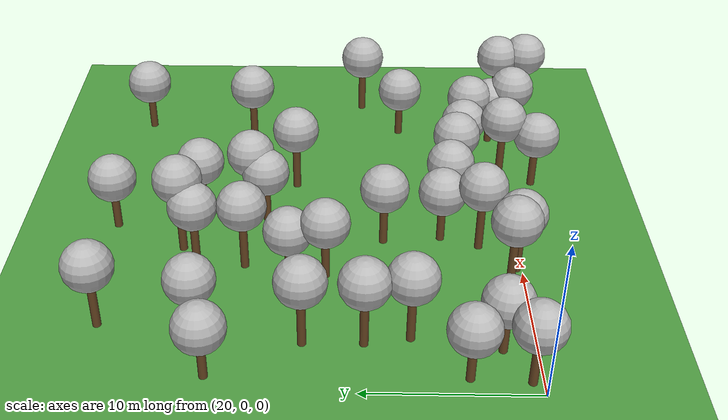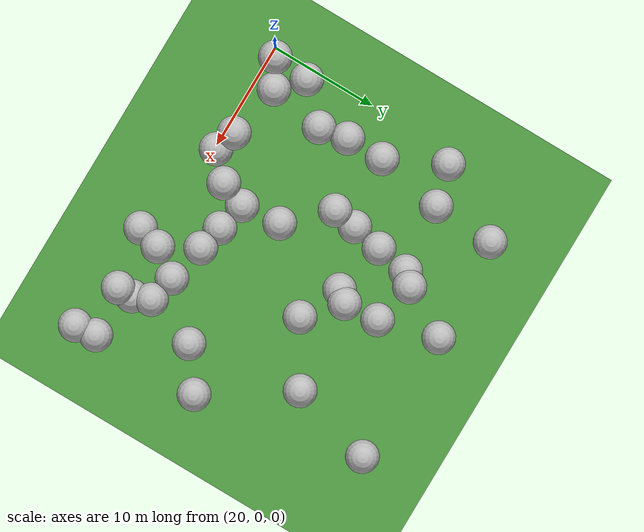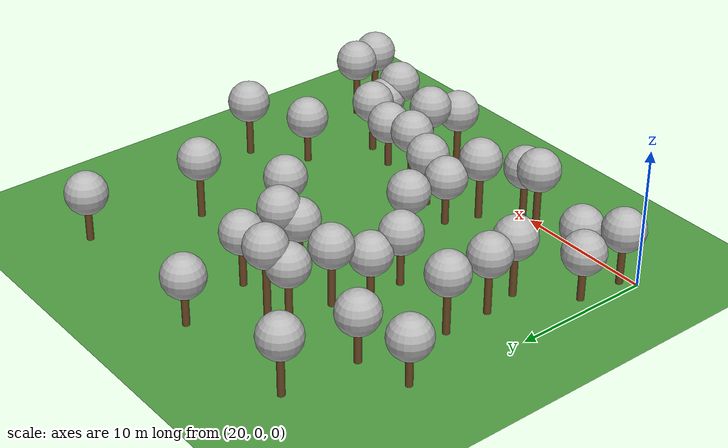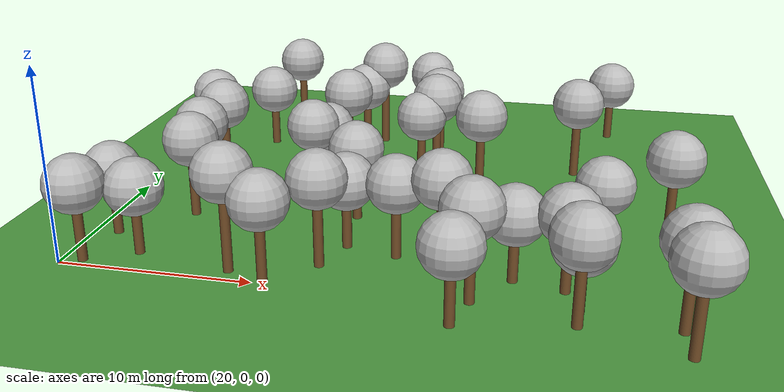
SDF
<sdf version="1.5">
 <world name="default">
  <model name="tree_simple499">
   <static>1</static>
   <link name="link">
    <pose>0 0 0.1 0 -0 0</pose>
    <collision name="collision_trunk">
     <pose>0 0 2 0 -0 0</pose>
     <geometry><cylinder><radius>0.25</radius><length>4</length></cylinder></geometry>
    </collision>
    <collision name="collision_treetop">
     <pose>0 0 5.2 0 -0 0</pose>
     <geometry><sphere><radius>1.5</radius></sphere></geometry>
    </collision>
    <visual name="trunk">
     <pose>0 0 2 0 -0 0</pose>
     <geometry><cylinder><radius>0.25</radius><length>4</length></cylinder></geometry>
     <material>
      <script>
       <uri>model://tree_simple/scripts</uri>
       <uri>model://tree_simple/materials/textures</uri>
       <name>TreeSimple/Trunk</name>
      </script>
     </material>
    </visual>
    <visual name="treetop">
     <pose>0 0 5.2 0 -0 0</pose>
     <geometry><sphere><radius>1.5</radius></sphere></geometry>
     <material>
      <script>
       <uri>model://tree_simple/scripts</uri>
       <uri>model://tree_simple/materials/textures</uri>
       <name>TreeSimple/Treetop</name>
      </script>
     </material>
    </visual>
   </link>
   <pose>49.5772894431 -0.301033806291 -0.9218746038410421 0 -0 0</pose>
  </model>
  <model name="tree_simple490">
   <static>1</static>
   <link name="link">
    <pose>0 0 0.1 0 -0 0</pose>
    <collision name="collision_trunk">
     <pose>0 0 2 0 -0 0</pose>
     <geometry><cylinder><radius>0.25</radius><length>4</length></cylinder></geometry>
    </collision>
    <collision name="collision_treetop">
     <pose>0 0 5.2 0 -0 0</pose>
     <geometry><sphere><radius>1.5</radius></sphere></geometry>
    </collision>
    <visual name="trunk">
     <pose>0 0 2 0 -0 0</pose>
     <geometry><cylinder><radius>0.25</radius><length>4</length></cylinder></geometry>
     <material>
      <script>
       <uri>model://tree_simple/scripts</uri>
       <uri>model://tree_simple/materials/textures</uri>
       <name>TreeSimple/Trunk</name>
      </script>
     </material>
    </visual>
    <visual name="treetop">
     <pose>0 0 5.2 0 -0 0</pose>
     <geometry><sphere><radius>1.5</radius></sphere></geometry>
     <material>
      <script>
       <uri>model://tree_simple/scripts</uri>
       <uri>model://tree_simple/materials/textures</uri>
       <name>TreeSimple/Treetop</name>
      </script>
     </material>
    </visual>
   </link>
   <pose>28.486302093 0.994684244644 -0.20094864405570112 0 -0 0</pose>
  </model>
  <model name="tree_simple487">
   <static>1</static>
   <link name="link">
    <pose>0 0 0.1 0 -0 0</pose>
    <collision name="collision_trunk">
     <pose>0 0 2 0 -0 0</pose>
     <geometry><cylinder><radius>0.25</radius><length>4</length></cylinder></geometry>
    </collision>
    <collision name="collision_treetop">
     <pose>0 0 5.2 0 -0 0</pose>
     <geometry><sphere><radius>1.5</radius></sphere></geometry>
    </collision>
    <visual name="trunk">
     <pose>0 0 2 0 -0 0</pose>
     <geometry><cylinder><radius>0.25</radius><length>4</length></cylinder></geometry>
     <material>
      <script>
       <uri>model://tree_simple/scripts</uri>
       <uri>model://tree_simple/materials/textures</uri>
       <name>TreeSimple/Trunk</name>
      </script>
     </material>
    </visual>
    <visual name="treetop">
     <pose>0 0 5.2 0 -0 0</pose>
     <geometry><sphere><radius>1.5</radius></sphere></geometry>
     <material>
      <script>
       <uri>model://tree_simple/scripts</uri>
       <uri>model://tree_simple/materials/textures</uri>
       <name>TreeSimple/Treetop</name>
      </script>
     </material>
    </visual>
   </link>
   <pose>33.1280168764 8.35331864597 -1.3064170109202478 0 -0 0</pose>
  </model>
  <model name="tree_simple485">
   <static>1</static>
   <link name="link">
    <pose>0 0 0.1 0 -0 0</pose>
    <collision name="collision_trunk">
     <pose>0 0 2 0 -0 0</pose>
     <geometry><cylinder><radius>0.25</radius><length>4</length></cylinder></geometry>
    </collision>
    <collision name="collision_treetop">
     <pose>0 0 5.2 0 -0 0</pose>
     <geometry><sphere><radius>1.5</radius></sphere></geometry>
    </collision>
    <visual name="trunk">
     <pose>0 0 2 0 -0 0</pose>
     <geometry><cylinder><radius>0.25</radius><length>4</length></cylinder></geometry>
     <material>
      <script>
       <uri>model://tree_simple/scripts</uri>
       <uri>model://tree_simple/materials/textures</uri>
       <name>TreeSimple/Trunk</name>
      </script>
     </material>
    </visual>
    <visual name="treetop">
     <pose>0 0 5.2 0 -0 0</pose>
     <geometry><sphere><radius>1.5</radius></sphere></geometry>
     <material>
      <script>
       <uri>model://tree_simple/scripts</uri>
       <uri>model://tree_simple/materials/textures</uri>
       <name>TreeSimple/Treetop</name>
      </script>
     </material>
    </visual>
   </link>
   <pose>38.4673421664 3.60529435805 -0.771484179041458 0 -0 0</pose>
  </model>
  <model name="tree_simple431">
   <static>1</static>
   <link name="link">
    <pose>0 0 0.1 0 -0 0</pose>
    <collision name="collision_trunk">
     <pose>0 0 2 0 -0 0</pose>
     <geometry><cylinder><radius>0.25</radius><length>4</length></cylinder></geometry>
    </collision>
    <collision name="collision_treetop">
     <pose>0 0 5.2 0 -0 0</pose>
     <geometry><sphere><radius>1.5</radius></sphere></geometry>
    </collision>
    <visual name="trunk">
     <pose>0 0 2 0 -0 0</pose>
     <geometry><cylinder><radius>0.25</radius><length>4</length></cylinder></geometry>
     <material>
      <script>
       <uri>model://tree_simple/scripts</uri>
       <uri>model://tree_simple/materials/textures</uri>
       <name>TreeSimple/Trunk</name>
      </script>
     </material>
    </visual>
    <visual name="treetop">
     <pose>0 0 5.2 0 -0 0</pose>
     <geometry><sphere><radius>1.5</radius></sphere></geometry>
     <material>
      <script>
       <uri>model://tree_simple/scripts</uri>
       <uri>model://tree_simple/materials/textures</uri>
       <name>TreeSimple/Treetop</name>
      </script>
     </material>
    </visual>
   </link>
   <pose>21.2091972338 3.93897030512 -1.7713037912346459 0 -0 0</pose>
  </model>
  <model name="tree_simple387">
   <static>1</static>
   <link name="link">
    <pose>0 0 0.1 0 -0 0</pose>
    <collision name="collision_trunk">
     <pose>0 0 2 0 -0 0</pose>
     <geometry><cylinder><radius>0.25</radius><length>4</length></cylinder></geometry>
    </collision>
    <collision name="collision_treetop">
     <pose>0 0 5.2 0 -0 0</pose>
     <geometry><sphere><radius>1.5</radius></sphere></geometry>
    </collision>
    <visual name="trunk">
     <pose>0 0 2 0 -0 0</pose>
     <geometry><cylinder><radius>0.25</radius><length>4</length></cylinder></geometry>
     <material>
      <script>
       <uri>model://tree_simple/scripts</uri>
       <uri>model://tree_simple/materials/textures</uri>
       <name>TreeSimple/Trunk</name>
      </script>
     </material>
    </visual>
    <visual name="treetop">
     <pose>0 0 5.2 0 -0 0</pose>
     <geometry><sphere><radius>1.5</radius></sphere></geometry>
     <material>
      <script>
       <uri>model://tree_simple/scripts</uri>
       <uri>model://tree_simple/materials/textures</uri>
       <name>TreeSimple/Treetop</name>
      </script>
     </material>
    </visual>
   </link>
   <pose>25.1584680938 24.780687948 -1.0369780641451543 0 -0 0</pose>
  </model>
  <model name="tree_simple378">
   <static>1</static>
   <link name="link">
    <pose>0 0 0.1 0 -0 0</pose>
    <collision name="collision_trunk">
     <pose>0 0 2 0 -0 0</pose>
     <geometry><cylinder><radius>0.25</radius><length>4</length></cylinder></geometry>
    </collision>
    <collision name="collision_treetop">
     <pose>0 0 5.2 0 -0 0</pose>
     <geometry><sphere><radius>1.5</radius></sphere></geometry>
    </collision>
    <visual name="trunk">
     <pose>0 0 2 0 -0 0</pose>
     <geometry><cylinder><radius>0.25</radius><length>4</length></cylinder></geometry>
     <material>
      <script>
       <uri>model://tree_simple/scripts</uri>
       <uri>model://tree_simple/materials/textures</uri>
       <name>TreeSimple/Trunk</name>
      </script>
     </material>
    </visual>
    <visual name="treetop">
     <pose>0 0 5.2 0 -0 0</pose>
     <geometry><sphere><radius>1.5</radius></sphere></geometry>
     <material>
      <script>
       <uri>model://tree_simple/scripts</uri>
       <uri>model://tree_simple/materials/textures</uri>
       <name>TreeSimple/Treetop</name>
      </script>
     </material>
    </visual>
   </link>
   <pose>45.079812121 -0.754391736344 -1.0091268099741109 0 -0 0</pose>
  </model>
  <model name="tree_simple363">
   <static>1</static>
   <link name="link">
    <pose>0 0 0.1 0 -0 0</pose>
    <collision name="collision_trunk">
     <pose>0 0 2 0 -0 0</pose>
     <geometry><cylinder><radius>0.25</radius><length>4</length></cylinder></geometry>
    </collision>
    <collision name="collision_treetop">
     <pose>0 0 5.2 0 -0 0</pose>
     <geometry><sphere><radius>1.5</radius></sphere></geometry>
    </collision>
    <visual name="trunk">
     <pose>0 0 2 0 -0 0</pose>
     <geometry><cylinder><radius>0.25</radius><length>4</length></cylinder></geometry>
     <material>
      <script>
       <uri>model://tree_simple/scripts</uri>
       <uri>model://tree_simple/materials/textures</uri>
       <name>TreeSimple/Trunk</name>
      </script>
     </material>
    </visual>
    <visual name="treetop">
     <pose>0 0 5.2 0 -0 0</pose>
     <geometry><sphere><radius>1.5</radius></sphere></geometry>
     <material>
      <script>
       <uri>model://tree_simple/scripts</uri>
       <uri>model://tree_simple/materials/textures</uri>
       <name>TreeSimple/Treetop</name>
      </script>
     </material>
    </visual>
   </link>
   <pose>45.144398785 0.58220424318 -1.9536508692071004 0 -0 0</pose>
  </model>
  <model name="tree_simple354">
   <static>1</static>
   <link name="link">
    <pose>0 0 0.1 0 -0 0</pose>
    <collision name="collision_trunk">
     <pose>0 0 2 0 -0 0</pose>
     <geometry><cylinder><radius>0.25</radius><length>4</length></cylinder></geometry>
    </collision>
    <collision name="collision_treetop">
     <pose>0 0 5.2 0 -0 0</pose>
     <geometry><sphere><radius>1.5</radius></sphere></geometry>
    </collision>
    <visual name="trunk">
     <pose>0 0 2 0 -0 0</pose>
     <geometry><cylinder><radius>0.25</radius><length>4</length></cylinder></geometry>
     <material>
      <script>
       <uri>model://tree_simple/scripts</uri>
       <uri>model://tree_simple/materials/textures</uri>
       <name>TreeSimple/Trunk</name>
      </script>
     </material>
    </visual>
    <visual name="treetop">
     <pose>0 0 5.2 0 -0 0</pose>
     <geometry><sphere><radius>1.5</radius></sphere></geometry>
     <material>
      <script>
       <uri>model://tree_simple/scripts</uri>
       <uri>model://tree_simple/materials/textures</uri>
       <name>TreeSimple/Treetop</name>
      </script>
     </material>
    </visual>
   </link>
   <pose>32.6407591413 2.42607799047 -0.7642043657588002 0 -0 0</pose>
  </model>
  <model name="tree_simple335">
   <static>1</static>
   <link name="link">
    <pose>0 0 0.1 0 -0 0</pose>
    <collision name="collision_trunk">
     <pose>0 0 2 0 -0 0</pose>
     <geometry><cylinder><radius>0.25</radius><length>4</length></cylinder></geometry>
    </collision>
    <collision name="collision_treetop">
     <pose>0 0 5.2 0 -0 0</pose>
     <geometry><sphere><radius>1.5</radius></sphere></geometry>
    </collision>
    <visual name="trunk">
     <pose>0 0 2 0 -0 0</pose>
     <geometry><cylinder><radius>0.25</radius><length>4</length></cylinder></geometry>
     <material>
      <script>
       <uri>model://tree_simple/scripts</uri>
       <uri>model://tree_simple/materials/textures</uri>
       <name>TreeSimple/Trunk</name>
      </script>
     </material>
    </visual>
    <visual name="treetop">
     <pose>0 0 5.2 0 -0 0</pose>
     <geometry><sphere><radius>1.5</radius></sphere></geometry>
     <material>
      <script>
       <uri>model://tree_simple/scripts</uri>
       <uri>model://tree_simple/materials/textures</uri>
       <name>TreeSimple/Treetop</name>
      </script>
     </material>
    </visual>
   </link>
   <pose>34.5368026381 25.2759033923 -1.669915402294678 0 -0 0</pose>
  </model>
  <model name="tree_simple315">
   <static>1</static>
   <link name="link">
    <pose>0 0 0.1 0 -0 0</pose>
    <collision name="collision_trunk">
     <pose>0 0 2 0 -0 0</pose>
     <geometry><cylinder><radius>0.25</radius><length>4</length></cylinder></geometry>
    </collision>
    <collision name="collision_treetop">
     <pose>0 0 5.2 0 -0 0</pose>
     <geometry><sphere><radius>1.5</radius></sphere></geometry>
    </collision>
    <visual name="trunk">
     <pose>0 0 2 0 -0 0</pose>
     <geometry><cylinder><radius>0.25</radius><length>4</length></cylinder></geometry>
     <material>
      <script>
       <uri>model://tree_simple/scripts</uri>
       <uri>model://tree_simple/materials/textures</uri>
       <name>TreeSimple/Trunk</name>
      </script>
     </material>
    </visual>
    <visual name="treetop">
     <pose>0 0 5.2 0 -0 0</pose>
     <geometry><sphere><radius>1.5</radius></sphere></geometry>
     <material>
      <script>
       <uri>model://tree_simple/scripts</uri>
       <uri>model://tree_simple/materials/textures</uri>
       <name>TreeSimple/Treetop</name>
      </script>
     </material>
    </visual>
   </link>
   <pose>20.9855205965 0.626463942169 -1.2722262956679458 0 -0 0</pose>
  </model>
  <model name="tree_simple297">
   <static>1</static>
   <link name="link">
    <pose>0 0 0.1 0 -0 0</pose>
    <collision name="collision_trunk">
     <pose>0 0 2 0 -0 0</pose>
     <geometry><cylinder><radius>0.25</radius><length>4</length></cylinder></geometry>
    </collision>
    <collision name="collision_treetop">
     <pose>0 0 5.2 0 -0 0</pose>
     <geometry><sphere><radius>1.5</radius></sphere></geometry>
    </collision>
    <visual name="trunk">
     <pose>0 0 2 0 -0 0</pose>
     <geometry><cylinder><radius>0.25</radius><length>4</length></cylinder></geometry>
     <material>
      <script>
       <uri>model://tree_simple/scripts</uri>
       <uri>model://tree_simple/materials/textures</uri>
       <name>TreeSimple/Trunk</name>
      </script>
     </material>
    </visual>
    <visual name="treetop">
     <pose>0 0 5.2 0 -0 0</pose>
     <geometry><sphere><radius>1.5</radius></sphere></geometry>
     <material>
      <script>
       <uri>model://tree_simple/scripts</uri>
       <uri>model://tree_simple/materials/textures</uri>
       <name>TreeSimple/Treetop</name>
      </script>
     </material>
    </visual>
   </link>
   <pose>30.5775161842 16.8175844191 -0.8655397443798891 0 -0 0</pose>
  </model>
  <model name="tree_simple296">
   <static>1</static>
   <link name="link">
    <pose>0 0 0.1 0 -0 0</pose>
    <collision name="collision_trunk">
     <pose>0 0 2 0 -0 0</pose>
     <geometry><cylinder><radius>0.25</radius><length>4</length></cylinder></geometry>
    </collision>
    <collision name="collision_treetop">
     <pose>0 0 5.2 0 -0 0</pose>
     <geometry><sphere><radius>1.5</radius></sphere></geometry>
    </collision>
    <visual name="trunk">
     <pose>0 0 2 0 -0 0</pose>
     <geometry><cylinder><radius>0.25</radius><length>4</length></cylinder></geometry>
     <material>
      <script>
       <uri>model://tree_simple/scripts</uri>
       <uri>model://tree_simple/materials/textures</uri>
       <name>TreeSimple/Trunk</name>
      </script>
     </material>
    </visual>
    <visual name="treetop">
     <pose>0 0 5.2 0 -0 0</pose>
     <geometry><sphere><radius>1.5</radius></sphere></geometry>
     <material>
      <script>
       <uri>model://tree_simple/scripts</uri>
       <uri>model://tree_simple/materials/textures</uri>
       <name>TreeSimple/Treetop</name>
      </script>
     </material>
    </visual>
   </link>
   <pose>44.6267245304 17.3019041373 -0.8399582943474864 0 -0 0</pose>
  </model>
  <model name="tree_simple293">
   <static>1</static>
   <link name="link">
    <pose>0 0 0.1 0 -0 0</pose>
    <collision name="collision_trunk">
     <pose>0 0 2 0 -0 0</pose>
     <geometry><cylinder><radius>0.25</radius><length>4</length></cylinder></geometry>
    </collision>
    <collision name="collision_treetop">
     <pose>0 0 5.2 0 -0 0</pose>
     <geometry><sphere><radius>1.5</radius></sphere></geometry>
    </collision>
    <visual name="trunk">
     <pose>0 0 2 0 -0 0</pose>
     <geometry><cylinder><radius>0.25</radius><length>4</length></cylinder></geometry>
     <material>
      <script>
       <uri>model://tree_simple/scripts</uri>
       <uri>model://tree_simple/materials/textures</uri>
       <name>TreeSimple/Trunk</name>
      </script>
     </material>
    </visual>
    <visual name="treetop">
     <pose>0 0 5.2 0 -0 0</pose>
     <geometry><sphere><radius>1.5</radius></sphere></geometry>
     <material>
      <script>
       <uri>model://tree_simple/scripts</uri>
       <uri>model://tree_simple/materials/textures</uri>
       <name>TreeSimple/Treetop</name>
      </script>
     </material>
    </visual>
   </link>
   <pose>23.4063524119 1.93979754522 -1.7358983411988391 0 -0 0</pose>
  </model>
  <model name="tree_simple283">
   <static>1</static>
   <link name="link">
    <pose>0 0 0.1 0 -0 0</pose>
    <collision name="collision_trunk">
     <pose>0 0 2 0 -0 0</pose>
     <geometry><cylinder><radius>0.25</radius><length>4</length></cylinder></geometry>
    </collision>
    <collision name="collision_treetop">
     <pose>0 0 5.2 0 -0 0</pose>
     <geometry><sphere><radius>1.5</radius></sphere></geometry>
    </collision>
    <visual name="trunk">
     <pose>0 0 2 0 -0 0</pose>
     <geometry><cylinder><radius>0.25</radius><length>4</length></cylinder></geometry>
     <material>
      <script>
       <uri>model://tree_simple/scripts</uri>
       <uri>model://tree_simple/materials/textures</uri>
       <name>TreeSimple/Trunk</name>
      </script>
     </material>
    </visual>
    <visual name="treetop">
     <pose>0 0 5.2 0 -0 0</pose>
     <geometry><sphere><radius>1.5</radius></sphere></geometry>
     <material>
      <script>
       <uri>model://tree_simple/scripts</uri>
       <uri>model://tree_simple/materials/textures</uri>
       <name>TreeSimple/Treetop</name>
      </script>
     </material>
    </visual>
   </link>
   <pose>39.1815186035 14.0237047255 -0.9197687307777047 0 -0 0</pose>
  </model>
  <model name="tree_simple277">
   <static>1</static>
   <link name="link">
    <pose>0 0 0.1 0 -0 0</pose>
    <collision name="collision_trunk">
     <pose>0 0 2 0 -0 0</pose>
     <geometry><cylinder><radius>0.25</radius><length>4</length></cylinder></geometry>
    </collision>
    <collision name="collision_treetop">
     <pose>0 0 5.2 0 -0 0</pose>
     <geometry><sphere><radius>1.5</radius></sphere></geometry>
    </collision>
    <visual name="trunk">
     <pose>0 0 2 0 -0 0</pose>
     <geometry><cylinder><radius>0.25</radius><length>4</length></cylinder></geometry>
     <material>
      <script>
       <uri>model://tree_simple/scripts</uri>
       <uri>model://tree_simple/materials/textures</uri>
       <name>TreeSimple/Trunk</name>
      </script>
     </material>
    </visual>
    <visual name="treetop">
     <pose>0 0 5.2 0 -0 0</pose>
     <geometry><sphere><radius>1.5</radius></sphere></geometry>
     <material>
      <script>
       <uri>model://tree_simple/scripts</uri>
       <uri>model://tree_simple/materials/textures</uri>
       <name>TreeSimple/Treetop</name>
      </script>
     </material>
    </visual>
   </link>
   <pose>29.6986775877 11.8803123921 -1.395448725735744 0 -0 0</pose>
  </model>
  <model name="tree_simple274">
   <static>1</static>
   <link name="link">
    <pose>0 0 0.1 0 -0 0</pose>
    <collision name="collision_trunk">
     <pose>0 0 2 0 -0 0</pose>
     <geometry><cylinder><radius>0.25</radius><length>4</length></cylinder></geometry>
    </collision>
    <collision name="collision_treetop">
     <pose>0 0 5.2 0 -0 0</pose>
     <geometry><sphere><radius>1.5</radius></sphere></geometry>
    </collision>
    <visual name="trunk">
     <pose>0 0 2 0 -0 0</pose>
     <geometry><cylinder><radius>0.25</radius><length>4</length></cylinder></geometry>
     <material>
      <script>
       <uri>model://tree_simple/scripts</uri>
       <uri>model://tree_simple/materials/textures</uri>
       <name>TreeSimple/Trunk</name>
      </script>
     </material>
    </visual>
    <visual name="treetop">
     <pose>0 0 5.2 0 -0 0</pose>
     <geometry><sphere><radius>1.5</radius></sphere></geometry>
     <material>
      <script>
       <uri>model://tree_simple/scripts</uri>
       <uri>model://tree_simple/materials/textures</uri>
       <name>TreeSimple/Treetop</name>
      </script>
     </material>
    </visual>
   </link>
   <pose>36.1444858675 4.12221392714 -1.4008131127965162 0 -0 0</pose>
  </model>
  <model name="tree_simple270">
   <static>1</static>
   <link name="link">
    <pose>0 0 0.1 0 -0 0</pose>
    <collision name="collision_trunk">
     <pose>0 0 2 0 -0 0</pose>
     <geometry><cylinder><radius>0.25</radius><length>4</length></cylinder></geometry>
    </collision>
    <collision name="collision_treetop">
     <pose>0 0 5.2 0 -0 0</pose>
     <geometry><sphere><radius>1.5</radius></sphere></geometry>
    </collision>
    <visual name="trunk">
     <pose>0 0 2 0 -0 0</pose>
     <geometry><cylinder><radius>0.25</radius><length>4</length></cylinder></geometry>
     <material>
      <script>
       <uri>model://tree_simple/scripts</uri>
       <uri>model://tree_simple/materials/textures</uri>
       <name>TreeSimple/Trunk</name>
      </script>
     </material>
    </visual>
    <visual name="treetop">
     <pose>0 0 5.2 0 -0 0</pose>
     <geometry><sphere><radius>1.5</radius></sphere></geometry>
     <material>
      <script>
       <uri>model://tree_simple/scripts</uri>
       <uri>model://tree_simple/materials/textures</uri>
       <name>TreeSimple/Treetop</name>
      </script>
     </material>
    </visual>
   </link>
   <pose>36.1848743211 16.7262379366 -0.8372261584667209 0 -0 0</pose>
  </model>
  <model name="tree_simple266">
   <static>1</static>
   <link name="link">
    <pose>0 0 0.1 0 -0 0</pose>
    <collision name="collision_trunk">
     <pose>0 0 2 0 -0 0</pose>
     <geometry><cylinder><radius>0.25</radius><length>4</length></cylinder></geometry>
    </collision>
    <collision name="collision_treetop">
     <pose>0 0 5.2 0 -0 0</pose>
     <geometry><sphere><radius>1.5</radius></sphere></geometry>
    </collision>
    <visual name="trunk">
     <pose>0 0 2 0 -0 0</pose>
     <geometry><cylinder><radius>0.25</radius><length>4</length></cylinder></geometry>
     <material>
      <script>
       <uri>model://tree_simple/scripts</uri>
       <uri>model://tree_simple/materials/textures</uri>
       <name>TreeSimple/Trunk</name>
      </script>
     </material>
    </visual>
    <visual name="treetop">
     <pose>0 0 5.2 0 -0 0</pose>
     <geometry><sphere><radius>1.5</radius></sphere></geometry>
     <material>
      <script>
       <uri>model://tree_simple/scripts</uri>
       <uri>model://tree_simple/materials/textures</uri>
       <name>TreeSimple/Treetop</name>
      </script>
     </material>
    </visual>
   </link>
   <pose>24.8758321483 19.2237149963 -1.6629550330649212 0 -0 0</pose>
  </model>
  <model name="tree_simple242">
   <static>1</static>
   <link name="link">
    <pose>0 0 0.1 0 -0 0</pose>
    <collision name="collision_trunk">
     <pose>0 0 2 0 -0 0</pose>
     <geometry><cylinder><radius>0.25</radius><length>4</length></cylinder></geometry>
    </collision>
    <collision name="collision_treetop">
     <pose>0 0 5.2 0 -0 0</pose>
     <geometry><sphere><radius>1.5</radius></sphere></geometry>
    </collision>
    <visual name="trunk">
     <pose>0 0 2 0 -0 0</pose>
     <geometry><cylinder><radius>0.25</radius><length>4</length></cylinder></geometry>
     <material>
      <script>
       <uri>model://tree_simple/scripts</uri>
       <uri>model://tree_simple/materials/textures</uri>
       <name>TreeSimple/Trunk</name>
      </script>
     </material>
    </visual>
    <visual name="treetop">
     <pose>0 0 5.2 0 -0 0</pose>
     <geometry><sphere><radius>1.5</radius></sphere></geometry>
     <material>
      <script>
       <uri>model://tree_simple/scripts</uri>
       <uri>model://tree_simple/materials/textures</uri>
       <name>TreeSimple/Treetop</name>
      </script>
     </material>
    </visual>
   </link>
   <pose>23.8093795921 9.61974989159 -0.929103153963978 0 -0 0</pose>
  </model>
  <model name="tree_simple237">
   <static>1</static>
   <link name="link">
    <pose>0 0 0.1 0 -0 0</pose>
    <collision name="collision_trunk">
     <pose>0 0 2 0 -0 0</pose>
     <geometry><cylinder><radius>0.25</radius><length>4</length></cylinder></geometry>
    </collision>
    <collision name="collision_treetop">
     <pose>0 0 5.2 0 -0 0</pose>
     <geometry><sphere><radius>1.5</radius></sphere></geometry>
    </collision>
    <visual name="trunk">
     <pose>0 0 2 0 -0 0</pose>
     <geometry><cylinder><radius>0.25</radius><length>4</length></cylinder></geometry>
     <material>
      <script>
       <uri>model://tree_simple/scripts</uri>
       <uri>model://tree_simple/materials/textures</uri>
       <name>TreeSimple/Trunk</name>
      </script>
     </material>
    </visual>
    <visual name="treetop">
     <pose>0 0 5.2 0 -0 0</pose>
     <geometry><sphere><radius>1.5</radius></sphere></geometry>
     <material>
      <script>
       <uri>model://tree_simple/scripts</uri>
       <uri>model://tree_simple/materials/textures</uri>
       <name>TreeSimple/Treetop</name>
      </script>
     </material>
    </visual>
   </link>
   <pose>23.796461239 13.0760295483 -0.8555839753975625 0 -0 0</pose>
  </model>
  <model name="tree_simple219">
   <static>1</static>
   <link name="link">
    <pose>0 0 0.1 0 -0 0</pose>
    <collision name="collision_trunk">
     <pose>0 0 2 0 -0 0</pose>
     <geometry><cylinder><radius>0.25</radius><length>4</length></cylinder></geometry>
    </collision>
    <collision name="collision_treetop">
     <pose>0 0 5.2 0 -0 0</pose>
     <geometry><sphere><radius>1.5</radius></sphere></geometry>
    </collision>
    <visual name="trunk">
     <pose>0 0 2 0 -0 0</pose>
     <geometry><cylinder><radius>0.25</radius><length>4</length></cylinder></geometry>
     <material>
      <script>
       <uri>model://tree_simple/scripts</uri>
       <uri>model://tree_simple/materials/textures</uri>
       <name>TreeSimple/Trunk</name>
      </script>
     </material>
    </visual>
    <visual name="treetop">
     <pose>0 0 5.2 0 -0 0</pose>
     <geometry><sphere><radius>1.5</radius></sphere></geometry>
     <material>
      <script>
       <uri>model://tree_simple/scripts</uri>
       <uri>model://tree_simple/materials/textures</uri>
       <name>TreeSimple/Treetop</name>
      </script>
     </material>
    </visual>
   </link>
   <pose>32.089947678 20.7584358719 -0.04651566023679354 0 -0 0</pose>
  </model>
  <model name="tree_simple217">
   <static>1</static>
   <link name="link">
    <pose>0 0 0.1 0 -0 0</pose>
    <collision name="collision_trunk">
     <pose>0 0 2 0 -0 0</pose>
     <geometry><cylinder><radius>0.25</radius><length>4</length></cylinder></geometry>
    </collision>
    <collision name="collision_treetop">
     <pose>0 0 5.2 0 -0 0</pose>
     <geometry><sphere><radius>1.5</radius></sphere></geometry>
    </collision>
    <visual name="trunk">
     <pose>0 0 2 0 -0 0</pose>
     <geometry><cylinder><radius>0.25</radius><length>4</length></cylinder></geometry>
     <material>
      <script>
       <uri>model://tree_simple/scripts</uri>
       <uri>model://tree_simple/materials/textures</uri>
       <name>TreeSimple/Trunk</name>
      </script>
     </material>
    </visual>
    <visual name="treetop">
     <pose>0 0 5.2 0 -0 0</pose>
     <geometry><sphere><radius>1.5</radius></sphere></geometry>
     <material>
      <script>
       <uri>model://tree_simple/scripts</uri>
       <uri>model://tree_simple/materials/textures</uri>
       <name>TreeSimple/Treetop</name>
      </script>
     </material>
    </visual>
   </link>
   <pose>49.7701486167 -2.25839681325 -0.8365075703625516 0 -0 0</pose>
  </model>
  <model name="tree_simple216">
   <static>1</static>
   <link name="link">
    <pose>0 0 0.1 0 -0 0</pose>
    <collision name="collision_trunk">
     <pose>0 0 2 0 -0 0</pose>
     <geometry><cylinder><radius>0.25</radius><length>4</length></cylinder></geometry>
    </collision>
    <collision name="collision_treetop">
     <pose>0 0 5.2 0 -0 0</pose>
     <geometry><sphere><radius>1.5</radius></sphere></geometry>
    </collision>
    <visual name="trunk">
     <pose>0 0 2 0 -0 0</pose>
     <geometry><cylinder><radius>0.25</radius><length>4</length></cylinder></geometry>
     <material>
      <script>
       <uri>model://tree_simple/scripts</uri>
       <uri>model://tree_simple/materials/textures</uri>
       <name>TreeSimple/Trunk</name>
      </script>
     </material>
    </visual>
    <visual name="treetop">
     <pose>0 0 5.2 0 -0 0</pose>
     <geometry><sphere><radius>1.5</radius></sphere></geometry>
     <material>
      <script>
       <uri>model://tree_simple/scripts</uri>
       <uri>model://tree_simple/materials/textures</uri>
       <name>TreeSimple/Treetop</name>
      </script>
     </material>
    </visual>
   </link>
   <pose>46.7848412988 24.905742282 -1.7146878554429734 0 -0 0</pose>
  </model>
  <model name="tree_simple188">
   <static>1</static>
   <link name="link">
    <pose>0 0 0.1 0 -0 0</pose>
    <collision name="collision_trunk">
     <pose>0 0 2 0 -0 0</pose>
     <geometry><cylinder><radius>0.25</radius><length>4</length></cylinder></geometry>
    </collision>
    <collision name="collision_treetop">
     <pose>0 0 5.2 0 -0 0</pose>
     <geometry><sphere><radius>1.5</radius></sphere></geometry>
    </collision>
    <visual name="trunk">
     <pose>0 0 2 0 -0 0</pose>
     <geometry><cylinder><radius>0.25</radius><length>4</length></cylinder></geometry>
     <material>
      <script>
       <uri>model://tree_simple/scripts</uri>
       <uri>model://tree_simple/materials/textures</uri>
       <name>TreeSimple/Trunk</name>
      </script>
     </material>
    </visual>
    <visual name="treetop">
     <pose>0 0 5.2 0 -0 0</pose>
     <geometry><sphere><radius>1.5</radius></sphere></geometry>
     <material>
      <script>
       <uri>model://tree_simple/scripts</uri>
       <uri>model://tree_simple/materials/textures</uri>
       <name>TreeSimple/Treetop</name>
      </script>
     </material>
    </visual>
   </link>
   <pose>31.0766060016 19.8231593676 -1.268579415637239 0 -0 0</pose>
  </model>
  <model name="tree_simple151">
   <static>1</static>
   <link name="link">
    <pose>0 0 0.1 0 -0 0</pose>
    <collision name="collision_trunk">
     <pose>0 0 2 0 -0 0</pose>
     <geometry><cylinder><radius>0.25</radius><length>4</length></cylinder></geometry>
    </collision>
    <collision name="collision_treetop">
     <pose>0 0 5.2 0 -0 0</pose>
     <geometry><sphere><radius>1.5</radius></sphere></geometry>
    </collision>
    <visual name="trunk">
     <pose>0 0 2 0 -0 0</pose>
     <geometry><cylinder><radius>0.25</radius><length>4</length></cylinder></geometry>
     <material>
      <script>
       <uri>model://tree_simple/scripts</uri>
       <uri>model://tree_simple/materials/textures</uri>
       <name>TreeSimple/Trunk</name>
      </script>
     </material>
    </visual>
    <visual name="treetop">
     <pose>0 0 5.2 0 -0 0</pose>
     <geometry><sphere><radius>1.5</radius></sphere></geometry>
     <material>
      <script>
       <uri>model://tree_simple/scripts</uri>
       <uri>model://tree_simple/materials/textures</uri>
       <name>TreeSimple/Treetop</name>
      </script>
     </material>
    </visual>
   </link>
   <pose>44.4996407391 2.22143393779 -1.4352409424285473 0 -0 0</pose>
  </model>
  <model name="tree_simple147">
   <static>1</static>
   <link name="link">
    <pose>0 0 0.1 0 -0 0</pose>
    <collision name="collision_trunk">
     <pose>0 0 2 0 -0 0</pose>
     <geometry><cylinder><radius>0.25</radius><length>4</length></cylinder></geometry>
    </collision>
    <collision name="collision_treetop">
     <pose>0 0 5.2 0 -0 0</pose>
     <geometry><sphere><radius>1.5</radius></sphere></geometry>
    </collision>
    <visual name="trunk">
     <pose>0 0 2 0 -0 0</pose>
     <geometry><cylinder><radius>0.25</radius><length>4</length></cylinder></geometry>
     <material>
      <script>
       <uri>model://tree_simple/scripts</uri>
       <uri>model://tree_simple/materials/textures</uri>
       <name>TreeSimple/Trunk</name>
      </script>
     </material>
    </visual>
    <visual name="treetop">
     <pose>0 0 5.2 0 -0 0</pose>
     <geometry><sphere><radius>1.5</radius></sphere></geometry>
     <material>
      <script>
       <uri>model://tree_simple/scripts</uri>
       <uri>model://tree_simple/materials/textures</uri>
       <name>TreeSimple/Treetop</name>
      </script>
     </material>
    </visual>
   </link>
   <pose>35.3937687519 15.7697149942 -1.7099699788388087 0 -0 0</pose>
  </model>
  <model name="tree_simple125">
   <static>1</static>
   <link name="link">
    <pose>0 0 0.1 0 -0 0</pose>
    <collision name="collision_trunk">
     <pose>0 0 2 0 -0 0</pose>
     <geometry><cylinder><radius>0.25</radius><length>4</length></cylinder></geometry>
    </collision>
    <collision name="collision_treetop">
     <pose>0 0 5.2 0 -0 0</pose>
     <geometry><sphere><radius>1.5</radius></sphere></geometry>
    </collision>
    <visual name="trunk">
     <pose>0 0 2 0 -0 0</pose>
     <geometry><cylinder><radius>0.25</radius><length>4</length></cylinder></geometry>
     <material>
      <script>
       <uri>model://tree_simple/scripts</uri>
       <uri>model://tree_simple/materials/textures</uri>
       <name>TreeSimple/Trunk</name>
      </script>
     </material>
    </visual>
    <visual name="treetop">
     <pose>0 0 5.2 0 -0 0</pose>
     <geometry><sphere><radius>1.5</radius></sphere></geometry>
     <material>
      <script>
       <uri>model://tree_simple/scripts</uri>
       <uri>model://tree_simple/materials/textures</uri>
       <name>TreeSimple/Treetop</name>
      </script>
     </material>
    </visual>
   </link>
   <pose>49.6376718654 9.60982885919 -1.124686312990671 0 -0 0</pose>
  </model>
  <model name="tree_simple101">
   <static>1</static>
   <link name="link">
    <pose>0 0 0.1 0 -0 0</pose>
    <collision name="collision_trunk">
     <pose>0 0 2 0 -0 0</pose>
     <geometry><cylinder><radius>0.25</radius><length>4</length></cylinder></geometry>
    </collision>
    <collision name="collision_treetop">
     <pose>0 0 5.2 0 -0 0</pose>
     <geometry><sphere><radius>1.5</radius></sphere></geometry>
    </collision>
    <visual name="trunk">
     <pose>0 0 2 0 -0 0</pose>
     <geometry><cylinder><radius>0.25</radius><length>4</length></cylinder></geometry>
     <material>
      <script>
       <uri>model://tree_simple/scripts</uri>
       <uri>model://tree_simple/materials/textures</uri>
       <name>TreeSimple/Trunk</name>
      </script>
     </material>
    </visual>
    <visual name="treetop">
     <pose>0 0 5.2 0 -0 0</pose>
     <geometry><sphere><radius>1.5</radius></sphere></geometry>
     <material>
      <script>
       <uri>model://tree_simple/scripts</uri>
       <uri>model://tree_simple/materials/textures</uri>
       <name>TreeSimple/Treetop</name>
      </script>
     </material>
    </visual>
   </link>
   <pose>30.4497487196 0.325840967223 -1.1313616328708707 0 -0 0</pose>
  </model>
  <model name="tree_simple88">
   <static>1</static>
   <link name="link">
    <pose>0 0 0.1 0 -0 0</pose>
    <collision name="collision_trunk">
     <pose>0 0 2 0 -0 0</pose>
     <geometry><cylinder><radius>0.25</radius><length>4</length></cylinder></geometry>
    </collision>
    <collision name="collision_treetop">
     <pose>0 0 5.2 0 -0 0</pose>
     <geometry><sphere><radius>1.5</radius></sphere></geometry>
    </collision>
    <visual name="trunk">
     <pose>0 0 2 0 -0 0</pose>
     <geometry><cylinder><radius>0.25</radius><length>4</length></cylinder></geometry>
     <material>
      <script>
       <uri>model://tree_simple/scripts</uri>
       <uri>model://tree_simple/materials/textures</uri>
       <name>TreeSimple/Trunk</name>
      </script>
     </material>
    </visual>
    <visual name="treetop">
     <pose>0 0 5.2 0 -0 0</pose>
     <geometry><sphere><radius>1.5</radius></sphere></geometry>
     <material>
      <script>
       <uri>model://tree_simple/scripts</uri>
       <uri>model://tree_simple/materials/textures</uri>
       <name>TreeSimple/Treetop</name>
      </script>
     </material>
    </visual>
   </link>
   <pose>30.0100540879 14.1017102657 -2.233195114989556 0 -0 0</pose>
  </model>
  <model name="tree_simple82">
   <static>1</static>
   <link name="link">
    <pose>0 0 0.1 0 -0 0</pose>
    <collision name="collision_trunk">
     <pose>0 0 2 0 -0 0</pose>
     <geometry><cylinder><radius>0.25</radius><length>4</length></cylinder></geometry>
    </collision>
    <collision name="collision_treetop">
     <pose>0 0 5.2 0 -0 0</pose>
     <geometry><sphere><radius>1.5</radius></sphere></geometry>
    </collision>
    <visual name="trunk">
     <pose>0 0 2 0 -0 0</pose>
     <geometry><cylinder><radius>0.25</radius><length>4</length></cylinder></geometry>
     <material>
      <script>
       <uri>model://tree_simple/scripts</uri>
       <uri>model://tree_simple/materials/textures</uri>
       <name>TreeSimple/Trunk</name>
      </script>
     </material>
    </visual>
    <visual name="treetop">
     <pose>0 0 5.2 0 -0 0</pose>
     <geometry><sphere><radius>1.5</radius></sphere></geometry>
     <material>
      <script>
       <uri>model://tree_simple/scripts</uri>
       <uri>model://tree_simple/materials/textures</uri>
       <name>TreeSimple/Treetop</name>
      </script>
     </material>
    </visual>
   </link>
   <pose>42.0261591118 2.77520756708 -1.8912779570383758 0 -0 0</pose>
  </model>
  <model name="tree_simple69">
   <static>1</static>
   <link name="link">
    <pose>0 0 0.1 0 -0 0</pose>
    <collision name="collision_trunk">
     <pose>0 0 2 0 -0 0</pose>
     <geometry><cylinder><radius>0.25</radius><length>4</length></cylinder></geometry>
    </collision>
    <collision name="collision_treetop">
     <pose>0 0 5.2 0 -0 0</pose>
     <geometry><sphere><radius>1.5</radius></sphere></geometry>
    </collision>
    <visual name="trunk">
     <pose>0 0 2 0 -0 0</pose>
     <geometry><cylinder><radius>0.25</radius><length>4</length></cylinder></geometry>
     <material>
      <script>
       <uri>model://tree_simple/scripts</uri>
       <uri>model://tree_simple/materials/textures</uri>
       <name>TreeSimple/Trunk</name>
      </script>
     </material>
    </visual>
    <visual name="treetop">
     <pose>0 0 5.2 0 -0 0</pose>
     <geometry><sphere><radius>1.5</radius></sphere></geometry>
     <material>
      <script>
       <uri>model://tree_simple/scripts</uri>
       <uri>model://tree_simple/materials/textures</uri>
       <name>TreeSimple/Treetop</name>
      </script>
     </material>
    </visual>
   </link>
   <pose>24.2740605354 7.00706746043 -0.9607927289986458 0 -0 0</pose>
  </model>
  <model name="tree_simple54">
   <static>1</static>
   <link name="link">
    <pose>0 0 0.1 0 -0 0</pose>
    <collision name="collision_trunk">
     <pose>0 0 2 0 -0 0</pose>
     <geometry><cylinder><radius>0.25</radius><length>4</length></cylinder></geometry>
    </collision>
    <collision name="collision_treetop">
     <pose>0 0 5.2 0 -0 0</pose>
     <geometry><sphere><radius>1.5</radius></sphere></geometry>
    </collision>
    <visual name="trunk">
     <pose>0 0 2 0 -0 0</pose>
     <geometry><cylinder><radius>0.25</radius><length>4</length></cylinder></geometry>
     <material>
      <script>
       <uri>model://tree_simple/scripts</uri>
       <uri>model://tree_simple/materials/textures</uri>
       <name>TreeSimple/Trunk</name>
      </script>
     </material>
    </visual>
    <visual name="treetop">
     <pose>0 0 5.2 0 -0 0</pose>
     <geometry><sphere><radius>1.5</radius></sphere></geometry>
     <material>
      <script>
       <uri>model://tree_simple/scripts</uri>
       <uri>model://tree_simple/materials/textures</uri>
       <name>TreeSimple/Treetop</name>
      </script>
     </material>
    </visual>
   </link>
   <pose>40.2707740498 0.36304299765 -0.6771036941000225 0 -0 0</pose>
  </model>
  <model name="tree_simple46">
   <static>1</static>
   <link name="link">
    <pose>0 0 0.1 0 -0 0</pose>
    <collision name="collision_trunk">
     <pose>0 0 2 0 -0 0</pose>
     <geometry><cylinder><radius>0.25</radius><length>4</length></cylinder></geometry>
    </collision>
    <collision name="collision_treetop">
     <pose>0 0 5.2 0 -0 0</pose>
     <geometry><sphere><radius>1.5</radius></sphere></geometry>
    </collision>
    <visual name="trunk">
     <pose>0 0 2 0 -0 0</pose>
     <geometry><cylinder><radius>0.25</radius><length>4</length></cylinder></geometry>
     <material>
      <script>
       <uri>model://tree_simple/scripts</uri>
       <uri>model://tree_simple/materials/textures</uri>
       <name>TreeSimple/Trunk</name>
      </script>
     </material>
    </visual>
    <visual name="treetop">
     <pose>0 0 5.2 0 -0 0</pose>
     <geometry><sphere><radius>1.5</radius></sphere></geometry>
     <material>
      <script>
       <uri>model://tree_simple/scripts</uri>
       <uri>model://tree_simple/materials/textures</uri>
       <name>TreeSimple/Treetop</name>
      </script>
     </material>
    </visual>
   </link>
   <pose>35.9376574388 19.9099598652 -1.3086377857550138 0 -0 0</pose>
  </model>
  <model name="tree_simple45">
   <static>1</static>
   <link name="link">
    <pose>0 0 0.1 0 -0 0</pose>
    <collision name="collision_trunk">
     <pose>0 0 2 0 -0 0</pose>
     <geometry><cylinder><radius>0.25</radius><length>4</length></cylinder></geometry>
    </collision>
    <collision name="collision_treetop">
     <pose>0 0 5.2 0 -0 0</pose>
     <geometry><sphere><radius>1.5</radius></sphere></geometry>
    </collision>
    <visual name="trunk">
     <pose>0 0 2 0 -0 0</pose>
     <geometry><cylinder><radius>0.25</radius><length>4</length></cylinder></geometry>
     <material>
      <script>
       <uri>model://tree_simple/scripts</uri>
       <uri>model://tree_simple/materials/textures</uri>
       <name>TreeSimple/Trunk</name>
      </script>
     </material>
    </visual>
    <visual name="treetop">
     <pose>0 0 5.2 0 -0 0</pose>
     <geometry><sphere><radius>1.5</radius></sphere></geometry>
     <material>
      <script>
       <uri>model://tree_simple/scripts</uri>
       <uri>model://tree_simple/materials/textures</uri>
       <name>TreeSimple/Treetop</name>
      </script>
     </material>
    </visual>
   </link>
   <pose>33.4753312088 4.75995445327 -1.7406710726194405 0 -0 0</pose>
  </model>
  <model name="tree_simple20">
   <static>1</static>
   <link name="link">
    <pose>0 0 0.1 0 -0 0</pose>
    <collision name="collision_trunk">
     <pose>0 0 2 0 -0 0</pose>
     <geometry><cylinder><radius>0.25</radius><length>4</length></cylinder></geometry>
    </collision>
    <collision name="collision_treetop">
     <pose>0 0 5.2 0 -0 0</pose>
     <geometry><sphere><radius>1.5</radius></sphere></geometry>
    </collision>
    <visual name="trunk">
     <pose>0 0 2 0 -0 0</pose>
     <geometry><cylinder><radius>0.25</radius><length>4</length></cylinder></geometry>
     <material>
      <script>
       <uri>model://tree_simple/scripts</uri>
       <uri>model://tree_simple/materials/textures</uri>
       <name>TreeSimple/Trunk</name>
      </script>
     </material>
    </visual>
    <visual name="treetop">
     <pose>0 0 5.2 0 -0 0</pose>
     <geometry><sphere><radius>1.5</radius></sphere></geometry>
     <material>
      <script>
       <uri>model://tree_simple/scripts</uri>
       <uri>model://tree_simple/materials/textures</uri>
       <name>TreeSimple/Treetop</name>
      </script>
     </material>
    </visual>
   </link>
   <pose>21.1901136625 18.261917312 -1.7943301379109644 0 -0 0</pose>
  </model>
  <model name="tree_simple19">
   <static>1</static>
   <link name="link">
    <pose>0 0 0.1 0 -0 0</pose>
    <collision name="collision_trunk">
     <pose>0 0 2 0 -0 0</pose>
     <geometry><cylinder><radius>0.25</radius><length>4</length></cylinder></geometry>
    </collision>
    <collision name="collision_treetop">
     <pose>0 0 5.2 0 -0 0</pose>
     <geometry><sphere><radius>1.5</radius></sphere></geometry>
    </collision>
    <visual name="trunk">
     <pose>0 0 2 0 -0 0</pose>
     <geometry><cylinder><radius>0.25</radius><length>4</length></cylinder></geometry>
     <material>
      <script>
       <uri>model://tree_simple/scripts</uri>
       <uri>model://tree_simple/materials/textures</uri>
       <name>TreeSimple/Trunk</name>
      </script>
     </material>
    </visual>
    <visual name="treetop">
     <pose>0 0 5.2 0 -0 0</pose>
     <geometry><sphere><radius>1.5</radius></sphere></geometry>
     <material>
      <script>
       <uri>model://tree_simple/scripts</uri>
       <uri>model://tree_simple/materials/textures</uri>
       <name>TreeSimple/Treetop</name>
      </script>
     </material>
    </visual>
   </link>
   <pose>39.6710404754 -1.77882210198 -1.484274346823606 0 -0 0</pose>
  </model>
  <model name="tree_simple12">
   <static>1</static>
   <link name="link">
    <pose>0 0 0.1 0 -0 0</pose>
    <collision name="collision_trunk">
     <pose>0 0 2 0 -0 0</pose>
     <geometry><cylinder><radius>0.25</radius><length>4</length></cylinder></geometry>
    </collision>
    <collision name="collision_treetop">
     <pose>0 0 5.2 0 -0 0</pose>
     <geometry><sphere><radius>1.5</radius></sphere></geometry>
    </collision>
    <visual name="trunk">
     <pose>0 0 2 0 -0 0</pose>
     <geometry><cylinder><radius>0.25</radius><length>4</length></cylinder></geometry>
     <material>
      <script>
       <uri>model://tree_simple/scripts</uri>
       <uri>model://tree_simple/materials/textures</uri>
       <name>TreeSimple/Trunk</name>
      </script>
     </material>
    </visual>
    <visual name="treetop">
     <pose>0 0 5.2 0 -0 0</pose>
     <geometry><sphere><radius>1.5</radius></sphere></geometry>
     <material>
      <script>
       <uri>model://tree_simple/scripts</uri>
       <uri>model://tree_simple/materials/textures</uri>
       <name>TreeSimple/Treetop</name>
      </script>
     </material>
    </visual>
   </link>
   <pose>46.1246254141 6.97446831658 -1.811629266807433 0 -0 0</pose>
  </model>
  <model name="ground_plane">
   <static>true</static>
   <link name="link">
    <collision name="collision">
     <geometry><plane><normal>0 0 1</normal><size>250 250</size></plane></geometry>
     <surface><friction><ode><mu>1</mu><mu2>1</mu2></ode></friction></surface>
    </collision>
    <visual name="grass">
     <cast_shadows>false</cast_shadows>
     <geometry><plane><normal>0 0 1</normal><size>150 250</size></plane></geometry>
     <material>
      <script><uri>file://media/materials/scripts/Gazebo.material</uri><name>Gazebo/Grass</name></script>
     </material>
    </visual>
   </link>
  </model>
 </world>
</sdf>
